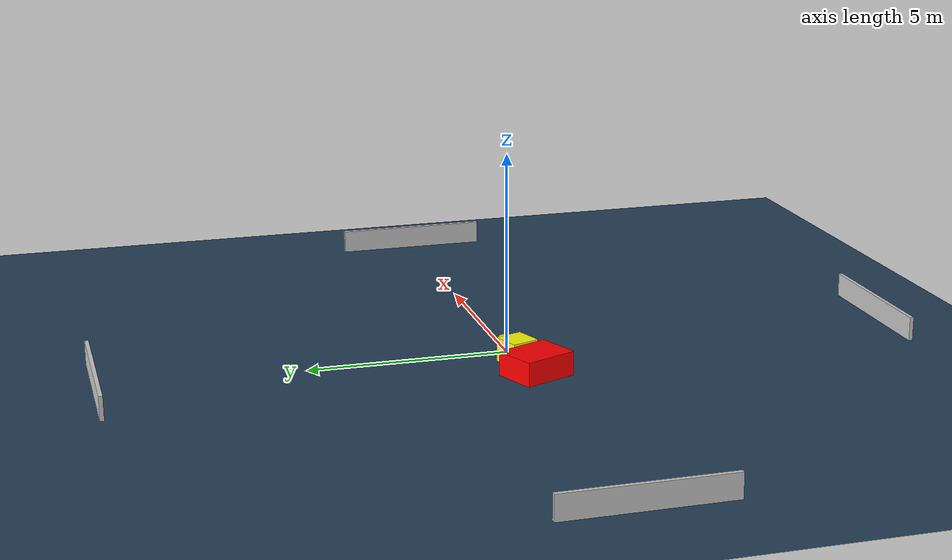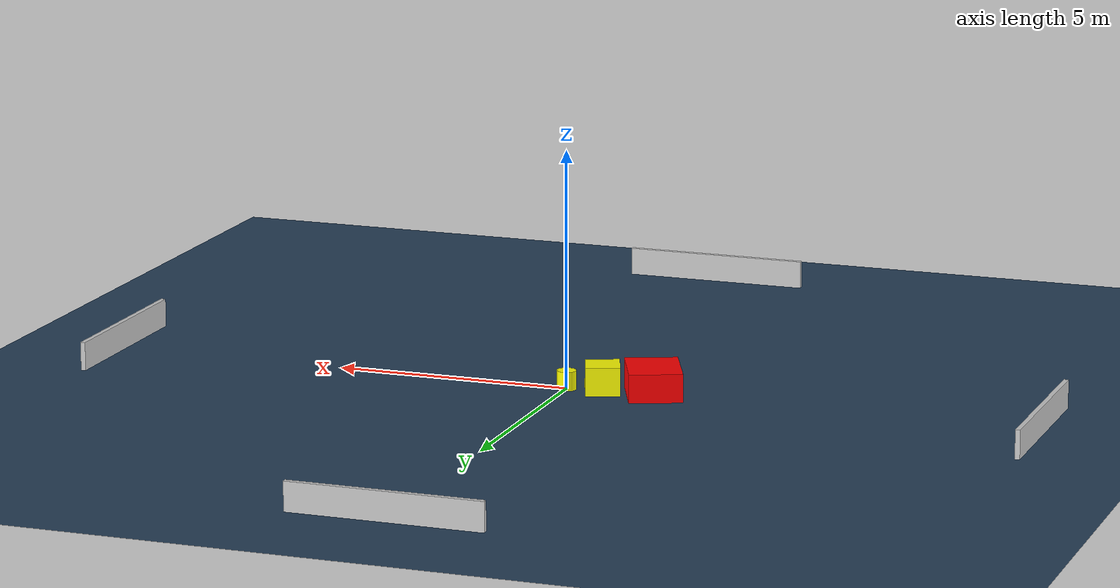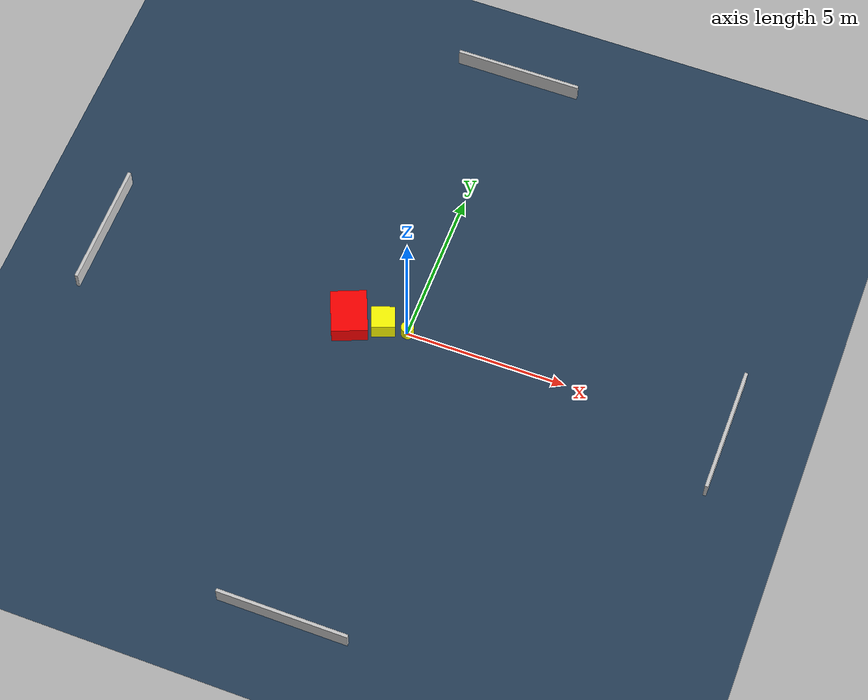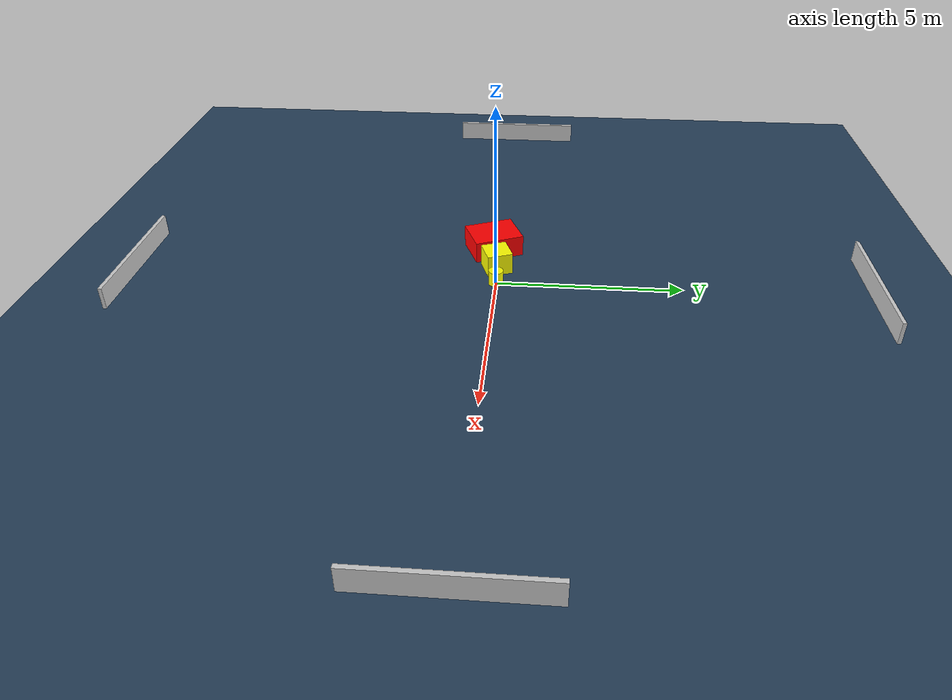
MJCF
<?xml version="1.0" ?>
<mujoco model="generated_environment">
  <option timestep="0.01" integrator="RK4" cone="elliptic"/>
  <default>
    <geom density="1"/>
  </default>
  <asset>
    <texture builtin="gradient" height="3072" name="skybox" rgb1="0.3 0.5 0.7" rgb2="0 0 0" type="skybox" width="512"/>
    <texture builtin="checker" height="300" name="groundplane" rgb1="0.2 0.3 0.4" rgb2="0.1 0.2 0.3" type="2d" width="300"/>
    <material name="groundplane" reflectance="0.2" texrepeat="5 5" texture="groundplane"/>
  </asset>
  <worldbody>
    <light dir="0 0 -1" directional="true" pos="0 0 1.5"/>
    <geom condim="3" friction="0.5 0.005 0.001" material="groundplane" name="floor" pos="0 0 0" size="0 0 0.05" type="plane"/>
    <body name="walls">
      <geom name="wall_1" condim="4" pos="-10.0 0.0 0.3" rgba="0.800000011920929 0.800000011920929 0.800000011920929 1.0" size="0.05 2.0 0.3" type="box"/>
      <geom name="wall_2" condim="4" pos="10.0 0.0 0.3" rgba="0.800000011920929 0.800000011920929 0.800000011920929 1.0" size="0.05 2.0 0.3" type="box"/>
      <geom name="wall_3" condim="4" pos="0.0 -10.0 0.3" rgba="0.800000011920929 0.800000011920929 0.800000011920929 1.0" size="2.0 0.05 0.3" type="box"/>
      <geom name="wall_4" condim="4" pos="0.0 10.0 0.3" rgba="0.800000011920929 0.800000011920929 0.800000011920929 1.0" size="2.0 0.05 0.3" type="box"/>
    </body>
    <body name="robot">
      <joint name="joint_x" type="slide" pos="0 0 0" axis="1 0 0"/>
      <joint name="joint_y" type="slide" pos="0 0 0" axis="0 1 0"/>
      <geom name="robot" type="cylinder" pos="0.0 0.0 0.2" size="0.2 0.2 0.0" mass="5.0" friction="1.0 0.005 0.0001" condim="4" rgba="1.0 1.0 0.0 1.0"/>
    </body>
    <body name="obstacle_1_movable">
      <geom name="obstacle_1_movable" condim="4" pos="-0.7691691038820643 -0.032452793752143445 0.3" euler="0 0 290.3967579547504" friction="0.0 0.005 0.001" rgba="1.0 1.0 0.0 1.0" size="0.35442244824451263 0.35735859612177445 0.3" type="box" mass="0.1"/>
      <joint type="free"/>
    </body>
    <body name="obstacle_2_static">
      <geom name="obstacle_2_static" condim="4" pos="-1.8120997058748702 -0.19792149497801897 0.3" euler="0 0 22.756393170834528" friction="0.0 0.005 0.001" rgba="1.0 0.0 0.0 1.0" size="0.553810608926792 0.69465571010794 0.3" type="box"/>
    </body>
  </worldbody>
  <actuator>
    <motor name="actuator_x" joint="joint_x" gear="1" ctrlrange="-1 1"/>
    <motor name="actuator_y" joint="joint_y" gear="1" ctrlrange="-1 1"/>
  </actuator>
</mujoco>
